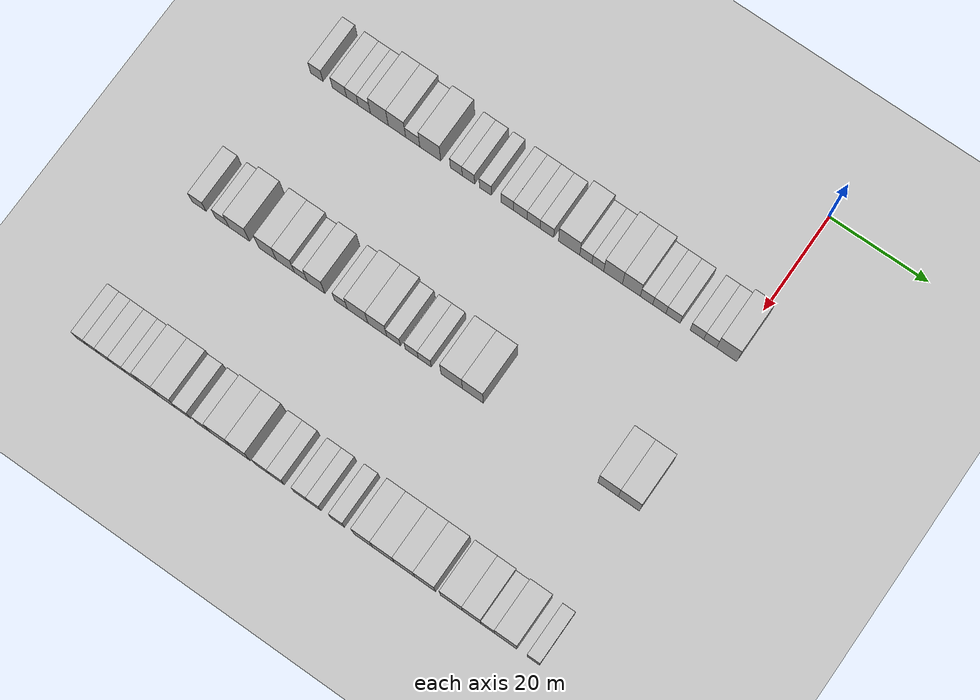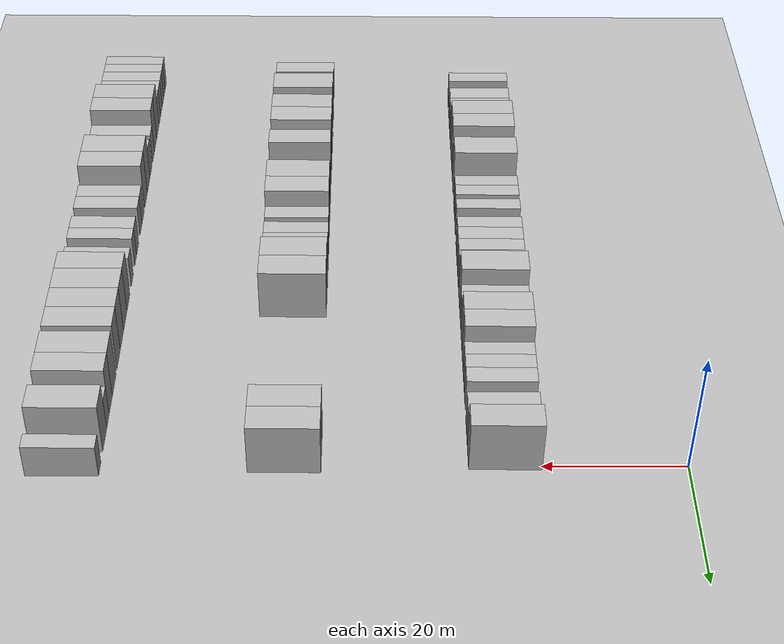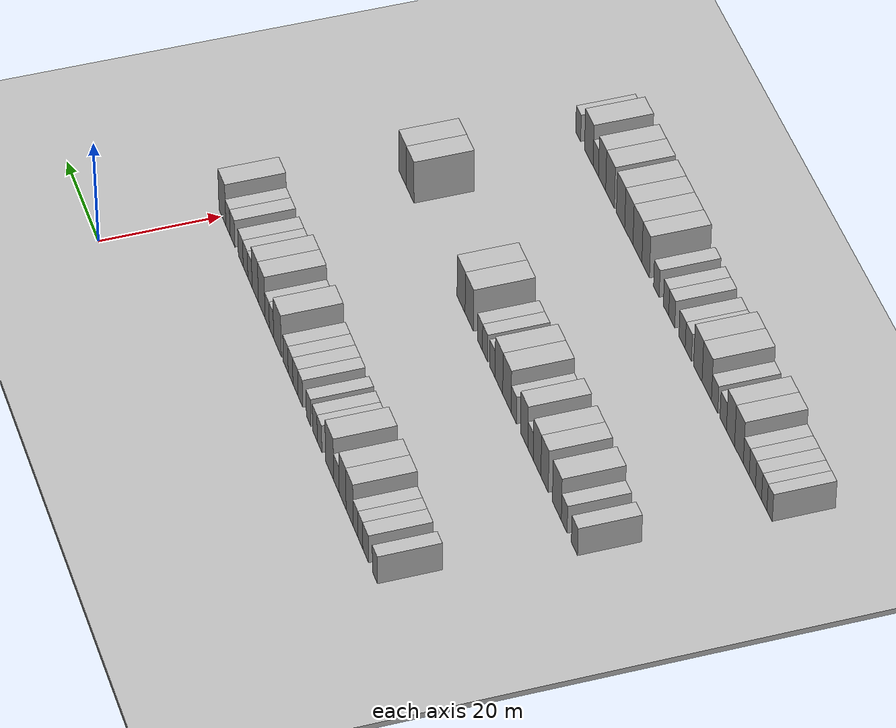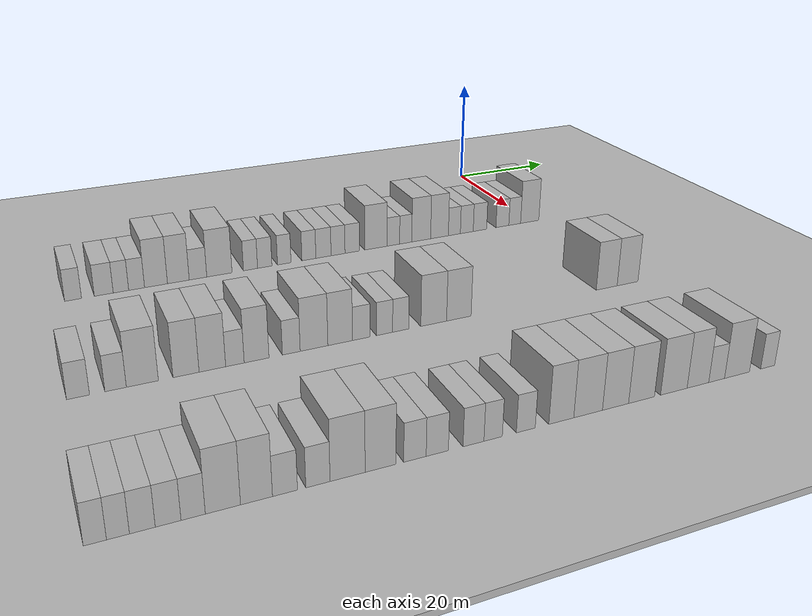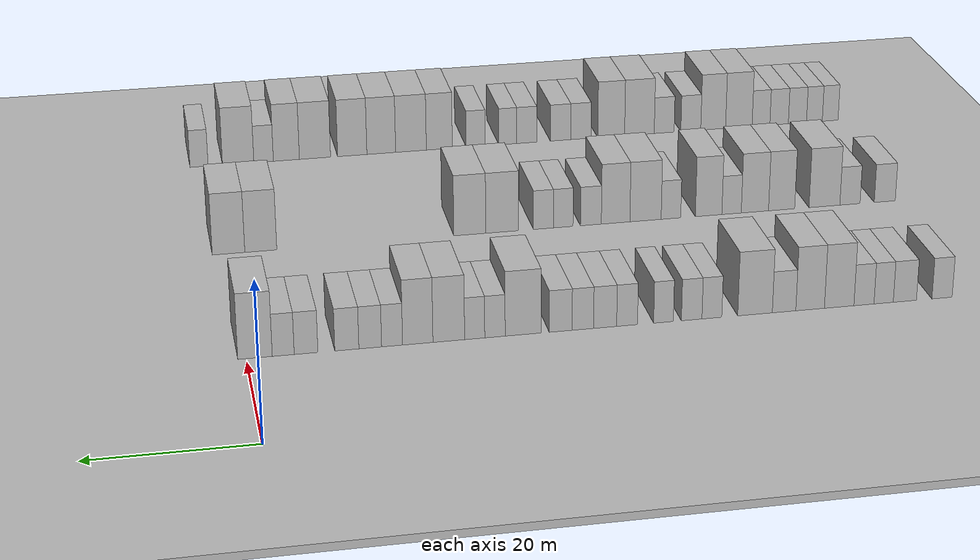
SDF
<sdf version="1.6">
 <world name="default">
  <include><name>ground_plane_1</name><uri>model://HANNAS_ground_plane</uri></include>
  <include>
   <name>ground_plane_2</name>
   <uri>model://HANNAS_ground_plane</uri>
   <pose>100 0 0  0 0 0</pose>
  </include>
  <model name="building_41">
   <static>1</static>
   <pose>25.0000 -85.6265 0 0.000000 0.000000 0.000000</pose>
   <link name="link">
    <pose>0 0 3.00 0 0 0</pose>
    <collision name="collision"><geometry><box><size>10.0000 2.6196 6.0000</size></box></geometry></collision>
    <visual name="visual">
     <cast_shadows>0</cast_shadows>
     <geometry><box><size>10.0000 2.6196 6.0000</size></box></geometry>
     <material>
      <script>
       <uri>model://HANNAS_wall/materials/scripts</uri>
       <uri>model://HANNAS_wall/materials/textures</uri>
       <name>vrc/HANNAS_wall</name>
      </script>
     </material>
    </visual>
   </link>
  </model>
  <model name="building_42">
   <static>1</static>
   <pose>25.0000 -80.8201 0 0.000000 0.000000 0.000000</pose>
   <link name="link">
    <pose>0 0 3.00 0 0 0</pose>
    <collision name="collision"><geometry><box><size>10.0000 2.9931 6.0000</size></box></geometry></collision>
    <visual name="visual">
     <cast_shadows>0</cast_shadows>
     <geometry><box><size>10.0000 2.9931 6.0000</size></box></geometry>
     <material>
      <script>
       <uri>model://HANNAS_wall/materials/scripts</uri>
       <uri>model://HANNAS_wall/materials/textures</uri>
       <name>vrc/HANNAS_wall</name>
      </script>
     </material>
    </visual>
   </link>
  </model>
  <model name="building_43">
   <static>1</static>
   <pose>25.0000 -78.0830 0 0.000000 0.000000 0.000000</pose>
   <link name="link">
    <pose>0 0 3.00 0 0 0</pose>
    <collision name="collision"><geometry><box><size>10.0000 2.4811 6.0000</size></box></geometry></collision>
    <visual name="visual">
     <cast_shadows>0</cast_shadows>
     <geometry><box><size>10.0000 2.4811 6.0000</size></box></geometry>
     <material>
      <script>
       <uri>model://HANNAS_wall/materials/scripts</uri>
       <uri>model://HANNAS_wall/materials/textures</uri>
       <name>vrc/HANNAS_wall</name>
      </script>
     </material>
    </visual>
   </link>
  </model>
  <model name="building_44">
   <static>1</static>
   <pose>25.0000 -75.5563 0 0.000000 0.000000 0.000000</pose>
   <link name="link">
    <pose>0 0 3.00 0 0 0</pose>
    <collision name="collision"><geometry><box><size>10.0000 2.5723 6.0000</size></box></geometry></collision>
    <visual name="visual">
     <cast_shadows>0</cast_shadows>
     <geometry><box><size>10.0000 2.5723 6.0000</size></box></geometry>
     <material>
      <script>
       <uri>model://HANNAS_wall/materials/scripts</uri>
       <uri>model://HANNAS_wall/materials/textures</uri>
       <name>vrc/HANNAS_wall</name>
      </script>
     </material>
    </visual>
   </link>
  </model>
  <model name="building_45">
   <static>1</static>
   <pose>25.0000 -72.3853 0 0.000000 0.000000 0.000000</pose>
   <link name="link">
    <pose>0 0 4.50 0 0 0</pose>
    <collision name="collision"><geometry><box><size>10.0000 3.7699 9.0000</size></box></geometry></collision>
    <visual name="visual">
     <cast_shadows>0</cast_shadows>
     <geometry><box><size>10.0000 3.7699 9.0000</size></box></geometry>
     <material>
      <script>
       <uri>model://HANNAS_wall/materials/scripts</uri>
       <uri>model://HANNAS_wall/materials/textures</uri>
       <name>vrc/HANNAS_wall</name>
      </script>
     </material>
    </visual>
   </link>
  </model>
  <model name="building_46">
   <static>1</static>
   <pose>25.0000 -68.6816 0 0.000000 0.000000 0.000000</pose>
   <link name="link">
    <pose>0 0 4.50 0 0 0</pose>
    <collision name="collision"><geometry><box><size>10.0000 3.6375 9.0000</size></box></geometry></collision>
    <visual name="visual">
     <cast_shadows>0</cast_shadows>
     <geometry><box><size>10.0000 3.6375 9.0000</size></box></geometry>
     <material>
      <script>
       <uri>model://HANNAS_wall/materials/scripts</uri>
       <uri>model://HANNAS_wall/materials/textures</uri>
       <name>vrc/HANNAS_wall</name>
      </script>
     </material>
    </visual>
   </link>
  </model>
  <model name="building_47">
   <static>1</static>
   <pose>25.0000 -65.3751 0 0.000000 0.000000 0.000000</pose>
   <link name="link">
    <pose>0 0 3.00 0 0 0</pose>
    <collision name="collision"><geometry><box><size>10.0000 2.9756 6.0000</size></box></geometry></collision>
    <visual name="visual">
     <cast_shadows>0</cast_shadows>
     <geometry><box><size>10.0000 2.9756 6.0000</size></box></geometry>
     <material>
      <script>
       <uri>model://HANNAS_wall/materials/scripts</uri>
       <uri>model://HANNAS_wall/materials/textures</uri>
       <name>vrc/HANNAS_wall</name>
      </script>
     </material>
    </visual>
   </link>
  </model>
  <model name="building_48">
   <static>1</static>
   <pose>25.0000 -61.7052 0 0.000000 0.000000 0.000000</pose>
   <link name="link">
    <pose>0 0 4.50 0 0 0</pose>
    <collision name="collision"><geometry><box><size>10.0000 4.3643 9.0000</size></box></geometry></collision>
    <visual name="visual">
     <cast_shadows>0</cast_shadows>
     <geometry><box><size>10.0000 4.3643 9.0000</size></box></geometry>
     <material>
      <script>
       <uri>model://HANNAS_wall/materials/scripts</uri>
       <uri>model://HANNAS_wall/materials/textures</uri>
       <name>vrc/HANNAS_wall</name>
      </script>
     </material>
    </visual>
   </link>
  </model>
  <model name="building_49">
   <static>1</static>
   <pose>25.0000 -56.2789 0 0.000000 0.000000 0.000000</pose>
   <link name="link">
    <pose>0 0 3.00 0 0 0</pose>
    <collision name="collision"><geometry><box><size>10.0000 2.4881 6.0000</size></box></geometry></collision>
    <visual name="visual">
     <cast_shadows>0</cast_shadows>
     <geometry><box><size>10.0000 2.4881 6.0000</size></box></geometry>
     <material>
      <script>
       <uri>model://HANNAS_wall/materials/scripts</uri>
       <uri>model://HANNAS_wall/materials/textures</uri>
       <name>vrc/HANNAS_wall</name>
      </script>
     </material>
    </visual>
   </link>
  </model>
  <model name="building_50">
   <static>1</static>
   <pose>25.0000 -53.7504 0 0.000000 0.000000 0.000000</pose>
   <link name="link">
    <pose>0 0 3.00 0 0 0</pose>
    <collision name="collision"><geometry><box><size>10.0000 2.5690 6.0000</size></box></geometry></collision>
    <visual name="visual">
     <cast_shadows>0</cast_shadows>
     <geometry><box><size>10.0000 2.5690 6.0000</size></box></geometry>
     <material>
      <script>
       <uri>model://HANNAS_wall/materials/scripts</uri>
       <uri>model://HANNAS_wall/materials/textures</uri>
       <name>vrc/HANNAS_wall</name>
      </script>
     </material>
    </visual>
   </link>
  </model>
  <model name="building_51">
   <static>1</static>
   <pose>25.0000 -50.2380 0 0.000000 0.000000 0.000000</pose>
   <link name="link">
    <pose>0 0 3.00 0 0 0</pose>
    <collision name="collision"><geometry><box><size>10.0000 2.4558 6.0000</size></box></geometry></collision>
    <visual name="visual">
     <cast_shadows>0</cast_shadows>
     <geometry><box><size>10.0000 2.4558 6.0000</size></box></geometry>
     <material>
      <script>
       <uri>model://HANNAS_wall/materials/scripts</uri>
       <uri>model://HANNAS_wall/materials/textures</uri>
       <name>vrc/HANNAS_wall</name>
      </script>
     </material>
    </visual>
   </link>
  </model>
  <model name="building_52">
   <static>1</static>
   <pose>25.0000 -45.7204 0 0.000000 0.000000 0.000000</pose>
   <link name="link">
    <pose>0 0 3.00 0 0 0</pose>
    <collision name="collision"><geometry><box><size>10.0000 2.5794 6.0000</size></box></geometry></collision>
    <visual name="visual">
     <cast_shadows>0</cast_shadows>
     <geometry><box><size>10.0000 2.5794 6.0000</size></box></geometry>
     <material>
      <script>
       <uri>model://HANNAS_wall/materials/scripts</uri>
       <uri>model://HANNAS_wall/materials/textures</uri>
       <name>vrc/HANNAS_wall</name>
      </script>
     </material>
    </visual>
   </link>
  </model>
  <model name="building_53">
   <static>1</static>
   <pose>25.0000 -43.0080 0 0.000000 0.000000 0.000000</pose>
   <link name="link">
    <pose>0 0 3.00 0 0 0</pose>
    <collision name="collision"><geometry><box><size>10.0000 2.8453 6.0000</size></box></geometry></collision>
    <visual name="visual">
     <cast_shadows>0</cast_shadows>
     <geometry><box><size>10.0000 2.8453 6.0000</size></box></geometry>
     <material>
      <script>
       <uri>model://HANNAS_wall/materials/scripts</uri>
       <uri>model://HANNAS_wall/materials/textures</uri>
       <name>vrc/HANNAS_wall</name>
      </script>
     </material>
    </visual>
   </link>
  </model>
  <model name="building_54">
   <static>1</static>
   <pose>25.0000 -40.2652 0 0.000000 0.000000 0.000000</pose>
   <link name="link">
    <pose>0 0 3.00 0 0 0</pose>
    <collision name="collision"><geometry><box><size>10.0000 2.6403 6.0000</size></box></geometry></collision>
    <visual name="visual">
     <cast_shadows>0</cast_shadows>
     <geometry><box><size>10.0000 2.6403 6.0000</size></box></geometry>
     <material>
      <script>
       <uri>model://HANNAS_wall/materials/scripts</uri>
       <uri>model://HANNAS_wall/materials/textures</uri>
       <name>vrc/HANNAS_wall</name>
      </script>
     </material>
    </visual>
   </link>
  </model>
  <model name="building_55">
   <static>1</static>
   <pose>25.0000 -37.5431 0 0.000000 0.000000 0.000000</pose>
   <link name="link">
    <pose>0 0 3.00 0 0 0</pose>
    <collision name="collision"><geometry><box><size>10.0000 2.8040 6.0000</size></box></geometry></collision>
    <visual name="visual">
     <cast_shadows>0</cast_shadows>
     <geometry><box><size>10.0000 2.8040 6.0000</size></box></geometry>
     <material>
      <script>
       <uri>model://HANNAS_wall/materials/scripts</uri>
       <uri>model://HANNAS_wall/materials/textures</uri>
       <name>vrc/HANNAS_wall</name>
      </script>
     </material>
    </visual>
   </link>
  </model>
  <model name="building_56">
   <static>1</static>
   <pose>25.0000 -32.9571 0 0.000000 0.000000 0.000000</pose>
   <link name="link">
    <pose>0 0 4.50 0 0 0</pose>
    <collision name="collision"><geometry><box><size>10.0000 4.3679 9.0000</size></box></geometry></collision>
    <visual name="visual">
     <cast_shadows>0</cast_shadows>
     <geometry><box><size>10.0000 4.3679 9.0000</size></box></geometry>
     <material>
      <script>
       <uri>model://HANNAS_wall/materials/scripts</uri>
       <uri>model://HANNAS_wall/materials/textures</uri>
       <name>vrc/HANNAS_wall</name>
      </script>
     </material>
    </visual>
   </link>
  </model>
  <model name="building_57">
   <static>1</static>
   <pose>25.0000 -29.5361 0 0.000000 0.000000 0.000000</pose>
   <link name="link">
    <pose>0 0 3.00 0 0 0</pose>
    <collision name="collision"><geometry><box><size>10.0000 2.4743 6.0000</size></box></geometry></collision>
    <visual name="visual">
     <cast_shadows>0</cast_shadows>
     <geometry><box><size>10.0000 2.4743 6.0000</size></box></geometry>
     <material>
      <script>
       <uri>model://HANNAS_wall/materials/scripts</uri>
       <uri>model://HANNAS_wall/materials/textures</uri>
       <name>vrc/HANNAS_wall</name>
      </script>
     </material>
    </visual>
   </link>
  </model>
  <model name="building_58">
   <static>1</static>
   <pose>25.0000 -27.0801 0 0.000000 0.000000 0.000000</pose>
   <link name="link">
    <pose>0 0 3.00 0 0 0</pose>
    <collision name="collision"><geometry><box><size>10.0000 2.4377 6.0000</size></box></geometry></collision>
    <visual name="visual">
     <cast_shadows>0</cast_shadows>
     <geometry><box><size>10.0000 2.4377 6.0000</size></box></geometry>
     <material>
      <script>
       <uri>model://HANNAS_wall/materials/scripts</uri>
       <uri>model://HANNAS_wall/materials/textures</uri>
       <name>vrc/HANNAS_wall</name>
      </script>
     </material>
    </visual>
   </link>
  </model>
  <model name="building_59">
   <static>1</static>
   <pose>25.0000 -23.9537 0 0.000000 0.000000 0.000000</pose>
   <link name="link">
    <pose>0 0 4.50 0 0 0</pose>
    <collision name="collision"><geometry><box><size>10.0000 3.8151 9.0000</size></box></geometry></collision>
    <visual name="visual">
     <cast_shadows>0</cast_shadows>
     <geometry><box><size>10.0000 3.8151 9.0000</size></box></geometry>
     <material>
      <script>
       <uri>model://HANNAS_wall/materials/scripts</uri>
       <uri>model://HANNAS_wall/materials/textures</uri>
       <name>vrc/HANNAS_wall</name>
      </script>
     </material>
    </visual>
   </link>
  </model>
  <model name="building_60">
   <static>1</static>
   <pose>25.0000 -20.2255 0 0.000000 0.000000 0.000000</pose>
   <link name="link">
    <pose>0 0 4.50 0 0 0</pose>
    <collision name="collision"><geometry><box><size>10.0000 3.6412 9.0000</size></box></geometry></collision>
    <visual name="visual">
     <cast_shadows>0</cast_shadows>
     <geometry><box><size>10.0000 3.6412 9.0000</size></box></geometry>
     <material>
      <script>
       <uri>model://HANNAS_wall/materials/scripts</uri>
       <uri>model://HANNAS_wall/materials/textures</uri>
       <name>vrc/HANNAS_wall</name>
      </script>
     </material>
    </visual>
   </link>
  </model>
  <model name="building_61">
   <static>1</static>
   <pose>25.0000 -17.1517 0 0.000000 0.000000 0.000000</pose>
   <link name="link">
    <pose>0 0 3.00 0 0 0</pose>
    <collision name="collision"><geometry><box><size>10.0000 2.5064 6.0000</size></box></geometry></collision>
    <visual name="visual">
     <cast_shadows>0</cast_shadows>
     <geometry><box><size>10.0000 2.5064 6.0000</size></box></geometry>
     <material>
      <script>
       <uri>model://HANNAS_wall/materials/scripts</uri>
       <uri>model://HANNAS_wall/materials/textures</uri>
       <name>vrc/HANNAS_wall</name>
      </script>
     </material>
    </visual>
   </link>
  </model>
  <model name="building_62">
   <static>1</static>
   <pose>25.0000 -14.5448 0 0.000000 0.000000 0.000000</pose>
   <link name="link">
    <pose>0 0 3.00 0 0 0</pose>
    <collision name="collision"><geometry><box><size>10.0000 2.7074 6.0000</size></box></geometry></collision>
    <visual name="visual">
     <cast_shadows>0</cast_shadows>
     <geometry><box><size>10.0000 2.7074 6.0000</size></box></geometry>
     <material>
      <script>
       <uri>model://HANNAS_wall/materials/scripts</uri>
       <uri>model://HANNAS_wall/materials/textures</uri>
       <name>vrc/HANNAS_wall</name>
      </script>
     </material>
    </visual>
   </link>
  </model>
  <model name="building_63">
   <static>1</static>
   <pose>25.0000 -11.7615 0 0.000000 0.000000 0.000000</pose>
   <link name="link">
    <pose>0 0 3.00 0 0 0</pose>
    <collision name="collision"><geometry><box><size>10.0000 2.8593 6.0000</size></box></geometry></collision>
    <visual name="visual">
     <cast_shadows>0</cast_shadows>
     <geometry><box><size>10.0000 2.8593 6.0000</size></box></geometry>
     <material>
      <script>
       <uri>model://HANNAS_wall/materials/scripts</uri>
       <uri>model://HANNAS_wall/materials/textures</uri>
       <name>vrc/HANNAS_wall</name>
      </script>
     </material>
    </visual>
   </link>
  </model>
  <model name="building_64">
   <static>1</static>
   <pose>25.0000 -6.9346 0 0.000000 0.000000 0.000000</pose>
   <link name="link">
    <pose>0 0 3.00 0 0 0</pose>
    <collision name="collision"><geometry><box><size>10.0000 2.7945 6.0000</size></box></geometry></collision>
    <visual name="visual">
     <cast_shadows>0</cast_shadows>
     <geometry><box><size>10.0000 2.7945 6.0000</size></box></geometry>
     <material>
      <script>
       <uri>model://HANNAS_wall/materials/scripts</uri>
       <uri>model://HANNAS_wall/materials/textures</uri>
       <name>vrc/HANNAS_wall</name>
      </script>
     </material>
    </visual>
   </link>
  </model>
  <model name="building_65">
   <static>1</static>
   <pose>25.0000 -4.2484 0 0.000000 0.000000 0.000000</pose>
   <link name="link">
    <pose>0 0 3.00 0 0 0</pose>
    <collision name="collision"><geometry><box><size>10.0000 2.5780 6.0000</size></box></geometry></collision>
    <visual name="visual">
     <cast_shadows>0</cast_shadows>
     <geometry><box><size>10.0000 2.5780 6.0000</size></box></geometry>
     <material>
      <script>
       <uri>model://HANNAS_wall/materials/scripts</uri>
       <uri>model://HANNAS_wall/materials/textures</uri>
       <name>vrc/HANNAS_wall</name>
      </script>
     </material>
    </visual>
   </link>
  </model>
  <model name="building_66">
   <static>1</static>
   <pose>25.0000 -0.9362 0 0.000000 0.000000 0.000000</pose>
   <link name="link">
    <pose>0 0 4.50 0 0 0</pose>
    <collision name="collision"><geometry><box><size>10.0000 4.0464 9.0000</size></box></geometry></collision>
    <visual name="visual">
     <cast_shadows>0</cast_shadows>
     <geometry><box><size>10.0000 4.0464 9.0000</size></box></geometry>
     <material>
      <script>
       <uri>model://HANNAS_wall/materials/scripts</uri>
       <uri>model://HANNAS_wall/materials/textures</uri>
       <name>vrc/HANNAS_wall</name>
      </script>
     </material>
    </visual>
   </link>
  </model>
  <model name="building_178">
   <static>1</static>
   <pose>55.0000 -88.4368 0 0.000000 0.000000 0.000000</pose>
   <link name="link">
    <pose>0 0 3.00 0 0 0</pose>
    <collision name="collision"><geometry><box><size>10.0000 2.9641 6.0000</size></box></geometry></collision>
    <visual name="visual">
     <cast_shadows>0</cast_shadows>
     <geometry><box><size>10.0000 2.9641 6.0000</size></box></geometry>
     <material>
      <script>
       <uri>model://HANNAS_wall/materials/scripts</uri>
       <uri>model://HANNAS_wall/materials/textures</uri>
       <name>vrc/HANNAS_wall</name>
      </script>
     </material>
    </visual>
   </link>
  </model>
  <model name="building_179">
   <static>1</static>
   <pose>55.0000 -83.5369 0 0.000000 0.000000 0.000000</pose>
   <link name="link">
    <pose>0 0 3.00 0 0 0</pose>
    <collision name="collision"><geometry><box><size>10.0000 2.8357 6.0000</size></box></geometry></collision>
    <visual name="visual">
     <cast_shadows>0</cast_shadows>
     <geometry><box><size>10.0000 2.8357 6.0000</size></box></geometry>
     <material>
      <script>
       <uri>model://HANNAS_wall/materials/scripts</uri>
       <uri>model://HANNAS_wall/materials/textures</uri>
       <name>vrc/HANNAS_wall</name>
      </script>
     </material>
    </visual>
   </link>
  </model>
  <model name="building_180">
   <static>1</static>
   <pose>55.0000 -79.9616 0 0.000000 0.000000 0.000000</pose>
   <link name="link">
    <pose>0 0 4.50 0 0 0</pose>
    <collision name="collision"><geometry><box><size>10.0000 4.3150 9.0000</size></box></geometry></collision>
    <visual name="visual">
     <cast_shadows>0</cast_shadows>
     <geometry><box><size>10.0000 4.3150 9.0000</size></box></geometry>
     <material>
      <script>
       <uri>model://HANNAS_wall/materials/scripts</uri>
       <uri>model://HANNAS_wall/materials/textures</uri>
       <name>vrc/HANNAS_wall</name>
      </script>
     </material>
    </visual>
   </link>
  </model>
  <model name="building_181">
   <static>1</static>
   <pose>55.0000 -73.9859 0 0.000000 0.000000 0.000000</pose>
   <link name="link">
    <pose>0 0 4.50 0 0 0</pose>
    <collision name="collision"><geometry><box><size>10.0000 3.6363 9.0000</size></box></geometry></collision>
    <visual name="visual">
     <cast_shadows>0</cast_shadows>
     <geometry><box><size>10.0000 3.6363 9.0000</size></box></geometry>
     <material>
      <script>
       <uri>model://HANNAS_wall/materials/scripts</uri>
       <uri>model://HANNAS_wall/materials/textures</uri>
       <name>vrc/HANNAS_wall</name>
      </script>
     </material>
    </visual>
   </link>
  </model>
  <model name="building_182">
   <static>1</static>
   <pose>55.0000 -70.2810 0 0.000000 0.000000 0.000000</pose>
   <link name="link">
    <pose>0 0 4.50 0 0 0</pose>
    <collision name="collision"><geometry><box><size>10.0000 3.7736 9.0000</size></box></geometry></collision>
    <visual name="visual">
     <cast_shadows>0</cast_shadows>
     <geometry><box><size>10.0000 3.7736 9.0000</size></box></geometry>
     <material>
      <script>
       <uri>model://HANNAS_wall/materials/scripts</uri>
       <uri>model://HANNAS_wall/materials/textures</uri>
       <name>vrc/HANNAS_wall</name>
      </script>
     </material>
    </visual>
   </link>
  </model>
  <model name="building_183">
   <static>1</static>
   <pose>55.0000 -67.0568 0 0.000000 0.000000 0.000000</pose>
   <link name="link">
    <pose>0 0 3.00 0 0 0</pose>
    <collision name="collision"><geometry><box><size>10.0000 2.6746 6.0000</size></box></geometry></collision>
    <visual name="visual">
     <cast_shadows>0</cast_shadows>
     <geometry><box><size>10.0000 2.6746 6.0000</size></box></geometry>
     <material>
      <script>
       <uri>model://HANNAS_wall/materials/scripts</uri>
       <uri>model://HANNAS_wall/materials/textures</uri>
       <name>vrc/HANNAS_wall</name>
      </script>
     </material>
    </visual>
   </link>
  </model>
  <model name="building_184">
   <static>1</static>
   <pose>55.0000 -63.8959 0 0.000000 0.000000 0.000000</pose>
   <link name="link">
    <pose>0 0 4.50 0 0 0</pose>
    <collision name="collision"><geometry><box><size>10.0000 3.6474 9.0000</size></box></geometry></collision>
    <visual name="visual">
     <cast_shadows>0</cast_shadows>
     <geometry><box><size>10.0000 3.6474 9.0000</size></box></geometry>
     <material>
      <script>
       <uri>model://HANNAS_wall/materials/scripts</uri>
       <uri>model://HANNAS_wall/materials/textures</uri>
       <name>vrc/HANNAS_wall</name>
      </script>
     </material>
    </visual>
   </link>
  </model>
  <model name="building_185">
   <static>1</static>
   <pose>55.0000 -58.7326 0 0.000000 0.000000 0.000000</pose>
   <link name="link">
    <pose>0 0 3.00 0 0 0</pose>
    <collision name="collision"><geometry><box><size>10.0000 2.6791 6.0000</size></box></geometry></collision>
    <visual name="visual">
     <cast_shadows>0</cast_shadows>
     <geometry><box><size>10.0000 2.6791 6.0000</size></box></geometry>
     <material>
      <script>
       <uri>model://HANNAS_wall/materials/scripts</uri>
       <uri>model://HANNAS_wall/materials/textures</uri>
       <name>vrc/HANNAS_wall</name>
      </script>
     </material>
    </visual>
   </link>
  </model>
  <model name="building_186">
   <static>1</static>
   <pose>55.0000 -55.2650 0 0.000000 0.000000 0.000000</pose>
   <link name="link">
    <pose>0 0 4.50 0 0 0</pose>
    <collision name="collision"><geometry><box><size>10.0000 4.2561 9.0000</size></box></geometry></collision>
    <visual name="visual">
     <cast_shadows>0</cast_shadows>
     <geometry><box><size>10.0000 4.2561 9.0000</size></box></geometry>
     <material>
      <script>
       <uri>model://HANNAS_wall/materials/scripts</uri>
       <uri>model://HANNAS_wall/materials/textures</uri>
       <name>vrc/HANNAS_wall</name>
      </script>
     </material>
    </visual>
   </link>
  </model>
  <model name="building_187">
   <static>1</static>
   <pose>55.0000 -51.2010 0 0.000000 0.000000 0.000000</pose>
   <link name="link">
    <pose>0 0 4.50 0 0 0</pose>
    <collision name="collision"><geometry><box><size>10.0000 3.8721 9.0000</size></box></geometry></collision>
    <visual name="visual">
     <cast_shadows>0</cast_shadows>
     <geometry><box><size>10.0000 3.8721 9.0000</size></box></geometry>
     <material>
      <script>
       <uri>model://HANNAS_wall/materials/scripts</uri>
       <uri>model://HANNAS_wall/materials/textures</uri>
       <name>vrc/HANNAS_wall</name>
      </script>
     </material>
    </visual>
   </link>
  </model>
  <model name="building_188">
   <static>1</static>
   <pose>55.0000 -47.8561 0 0.000000 0.000000 0.000000</pose>
   <link name="link">
    <pose>0 0 3.00 0 0 0</pose>
    <collision name="collision"><geometry><box><size>10.0000 2.8178 6.0000</size></box></geometry></collision>
    <visual name="visual">
     <cast_shadows>0</cast_shadows>
     <geometry><box><size>10.0000 2.8178 6.0000</size></box></geometry>
     <material>
      <script>
       <uri>model://HANNAS_wall/materials/scripts</uri>
       <uri>model://HANNAS_wall/materials/textures</uri>
       <name>vrc/HANNAS_wall</name>
      </script>
     </material>
    </visual>
   </link>
  </model>
  <model name="building_189">
   <static>1</static>
   <pose>55.0000 -44.1254 0 0.000000 0.000000 0.000000</pose>
   <link name="link">
    <pose>0 0 3.00 0 0 0</pose>
    <collision name="collision"><geometry><box><size>10.0000 2.6436 6.0000</size></box></geometry></collision>
    <visual name="visual">
     <cast_shadows>0</cast_shadows>
     <geometry><box><size>10.0000 2.6436 6.0000</size></box></geometry>
     <material>
      <script>
       <uri>model://HANNAS_wall/materials/scripts</uri>
       <uri>model://HANNAS_wall/materials/textures</uri>
       <name>vrc/HANNAS_wall</name>
      </script>
     </material>
    </visual>
   </link>
  </model>
  <model name="building_190">
   <static>1</static>
   <pose>55.0000 -41.4663 0 0.000000 0.000000 0.000000</pose>
   <link name="link">
    <pose>0 0 3.00 0 0 0</pose>
    <collision name="collision"><geometry><box><size>10.0000 2.6744 6.0000</size></box></geometry></collision>
    <visual name="visual">
     <cast_shadows>0</cast_shadows>
     <geometry><box><size>10.0000 2.6744 6.0000</size></box></geometry>
     <material>
      <script>
       <uri>model://HANNAS_wall/materials/scripts</uri>
       <uri>model://HANNAS_wall/materials/textures</uri>
       <name>vrc/HANNAS_wall</name>
      </script>
     </material>
    </visual>
   </link>
  </model>
  <model name="building_191">
   <static>1</static>
   <pose>55.0000 -35.9480 0 0.000000 0.000000 0.000000</pose>
   <link name="link">
    <pose>0 0 4.50 0 0 0</pose>
    <collision name="collision"><geometry><box><size>10.0000 4.3622 9.0000</size></box></geometry></collision>
    <visual name="visual">
     <cast_shadows>0</cast_shadows>
     <geometry><box><size>10.0000 4.3622 9.0000</size></box></geometry>
     <material>
      <script>
       <uri>model://HANNAS_wall/materials/scripts</uri>
       <uri>model://HANNAS_wall/materials/textures</uri>
       <name>vrc/HANNAS_wall</name>
      </script>
     </material>
    </visual>
   </link>
  </model>
  <model name="building_192">
   <static>1</static>
   <pose>55.0000 -31.6472 0 0.000000 0.000000 0.000000</pose>
   <link name="link">
    <pose>0 0 4.50 0 0 0</pose>
    <collision name="collision"><geometry><box><size>10.0000 4.2395 9.0000</size></box></geometry></collision>
    <visual name="visual">
     <cast_shadows>0</cast_shadows>
     <geometry><box><size>10.0000 4.2395 9.0000</size></box></geometry>
     <material>
      <script>
       <uri>model://HANNAS_wall/materials/scripts</uri>
       <uri>model://HANNAS_wall/materials/textures</uri>
       <name>vrc/HANNAS_wall</name>
      </script>
     </material>
    </visual>
   </link>
  </model>
  <model name="building_193">
   <static>1</static>
   <pose>55.0000 -4.3536 0 0.000000 0.000000 0.000000</pose>
   <link name="link">
    <pose>0 0 4.50 0 0 0</pose>
    <collision name="collision"><geometry><box><size>10.0000 4.1159 9.0000</size></box></geometry></collision>
    <visual name="visual">
     <cast_shadows>0</cast_shadows>
     <geometry><box><size>10.0000 4.1159 9.0000</size></box></geometry>
     <material>
      <script>
       <uri>model://HANNAS_wall/materials/scripts</uri>
       <uri>model://HANNAS_wall/materials/textures</uri>
       <name>vrc/HANNAS_wall</name>
      </script>
     </material>
    </visual>
   </link>
  </model>
  <model name="building_194">
   <static>1</static>
   <pose>55.0000 -0.2102 0 0.000000 0.000000 0.000000</pose>
   <link name="link">
    <pose>0 0 4.50 0 0 0</pose>
    <collision name="collision"><geometry><box><size>10.0000 4.1709 9.0000</size></box></geometry></collision>
    <visual name="visual">
     <cast_shadows>0</cast_shadows>
     <geometry><box><size>10.0000 4.1709 9.0000</size></box></geometry>
     <material>
      <script>
       <uri>model://HANNAS_wall/materials/scripts</uri>
       <uri>model://HANNAS_wall/materials/textures</uri>
       <name>vrc/HANNAS_wall</name>
      </script>
     </material>
    </visual>
   </link>
  </model>
  <model name="building_317">
   <static>1</static>
   <pose>85.0000 -90.2902 0 0.000000 0.000000 0.000000</pose>
   <link name="link">
    <pose>0 0 3.00 0 0 0</pose>
    <collision name="collision"><geometry><box><size>10.0000 2.4050 6.0000</size></box></geometry></collision>
    <visual name="visual">
     <cast_shadows>0</cast_shadows>
     <geometry><box><size>10.0000 2.4050 6.0000</size></box></geometry>
     <material>
      <script>
       <uri>model://HANNAS_wall/materials/scripts</uri>
       <uri>model://HANNAS_wall/materials/textures</uri>
       <name>vrc/HANNAS_wall</name>
      </script>
     </material>
    </visual>
   </link>
  </model>
  <model name="building_318">
   <static>1</static>
   <pose>85.0000 -87.8858 0 0.000000 0.000000 0.000000</pose>
   <link name="link">
    <pose>0 0 3.00 0 0 0</pose>
    <collision name="collision"><geometry><box><size>10.0000 2.4039 6.0000</size></box></geometry></collision>
    <visual name="visual">
     <cast_shadows>0</cast_shadows>
     <geometry><box><size>10.0000 2.4039 6.0000</size></box></geometry>
     <material>
      <script>
       <uri>model://HANNAS_wall/materials/scripts</uri>
       <uri>model://HANNAS_wall/materials/textures</uri>
       <name>vrc/HANNAS_wall</name>
      </script>
     </material>
    </visual>
   </link>
  </model>
  <model name="building_319">
   <static>1</static>
   <pose>85.0000 -85.3088 0 0.000000 0.000000 0.000000</pose>
   <link name="link">
    <pose>0 0 3.00 0 0 0</pose>
    <collision name="collision"><geometry><box><size>10.0000 2.7500 6.0000</size></box></geometry></collision>
    <visual name="visual">
     <cast_shadows>0</cast_shadows>
     <geometry><box><size>10.0000 2.7500 6.0000</size></box></geometry>
     <material>
      <script>
       <uri>model://HANNAS_wall/materials/scripts</uri>
       <uri>model://HANNAS_wall/materials/textures</uri>
       <name>vrc/HANNAS_wall</name>
      </script>
     </material>
    </visual>
   </link>
  </model>
  <model name="building_320">
   <static>1</static>
   <pose>85.0000 -82.5367 0 0.000000 0.000000 0.000000</pose>
   <link name="link">
    <pose>0 0 3.00 0 0 0</pose>
    <collision name="collision"><geometry><box><size>10.0000 2.7942 6.0000</size></box></geometry></collision>
    <visual name="visual">
     <cast_shadows>0</cast_shadows>
     <geometry><box><size>10.0000 2.7942 6.0000</size></box></geometry>
     <material>
      <script>
       <uri>model://HANNAS_wall/materials/scripts</uri>
       <uri>model://HANNAS_wall/materials/textures</uri>
       <name>vrc/HANNAS_wall</name>
      </script>
     </material>
    </visual>
   </link>
  </model>
  <model name="building_321">
   <static>1</static>
   <pose>85.0000 -79.7943 0 0.000000 0.000000 0.000000</pose>
   <link name="link">
    <pose>0 0 3.00 0 0 0</pose>
    <collision name="collision"><geometry><box><size>10.0000 2.6906 6.0000</size></box></geometry></collision>
    <visual name="visual">
     <cast_shadows>0</cast_shadows>
     <geometry><box><size>10.0000 2.6906 6.0000</size></box></geometry>
     <material>
      <script>
       <uri>model://HANNAS_wall/materials/scripts</uri>
       <uri>model://HANNAS_wall/materials/textures</uri>
       <name>vrc/HANNAS_wall</name>
      </script>
     </material>
    </visual>
   </link>
  </model>
  <model name="building_322">
   <static>1</static>
   <pose>85.0000 -76.4545 0 0.000000 0.000000 0.000000</pose>
   <link name="link">
    <pose>0 0 4.50 0 0 0</pose>
    <collision name="collision"><geometry><box><size>10.0000 3.9889 9.0000</size></box></geometry></collision>
    <visual name="visual">
     <cast_shadows>0</cast_shadows>
     <geometry><box><size>10.0000 3.9889 9.0000</size></box></geometry>
     <material>
      <script>
       <uri>model://HANNAS_wall/materials/scripts</uri>
       <uri>model://HANNAS_wall/materials/textures</uri>
       <name>vrc/HANNAS_wall</name>
      </script>
     </material>
    </visual>
   </link>
  </model>
  <model name="building_323">
   <static>1</static>
   <pose>85.0000 -72.6035 0 0.000000 0.000000 0.000000</pose>
   <link name="link">
    <pose>0 0 4.50 0 0 0</pose>
    <collision name="collision"><geometry><box><size>10.0000 3.7131 9.0000</size></box></geometry></collision>
    <visual name="visual">
     <cast_shadows>0</cast_shadows>
     <geometry><box><size>10.0000 3.7131 9.0000</size></box></geometry>
     <material>
      <script>
       <uri>model://HANNAS_wall/materials/scripts</uri>
       <uri>model://HANNAS_wall/materials/textures</uri>
       <name>vrc/HANNAS_wall</name>
      </script>
     </material>
    </visual>
   </link>
  </model>
  <model name="building_324">
   <static>1</static>
   <pose>85.0000 -69.2616 0 0.000000 0.000000 0.000000</pose>
   <link name="link">
    <pose>0 0 3.00 0 0 0</pose>
    <collision name="collision"><geometry><box><size>10.0000 2.9708 6.0000</size></box></geometry></collision>
    <visual name="visual">
     <cast_shadows>0</cast_shadows>
     <geometry><box><size>10.0000 2.9708 6.0000</size></box></geometry>
     <material>
      <script>
       <uri>model://HANNAS_wall/materials/scripts</uri>
       <uri>model://HANNAS_wall/materials/textures</uri>
       <name>vrc/HANNAS_wall</name>
      </script>
     </material>
    </visual>
   </link>
  </model>
  <model name="building_325">
   <static>1</static>
   <pose>85.0000 -65.2971 0 0.000000 0.000000 0.000000</pose>
   <link name="link">
    <pose>0 0 3.00 0 0 0</pose>
    <collision name="collision"><geometry><box><size>10.0000 2.9583 6.0000</size></box></geometry></collision>
    <visual name="visual">
     <cast_shadows>0</cast_shadows>
     <geometry><box><size>10.0000 2.9583 6.0000</size></box></geometry>
     <material>
      <script>
       <uri>model://HANNAS_wall/materials/scripts</uri>
       <uri>model://HANNAS_wall/materials/textures</uri>
       <name>vrc/HANNAS_wall</name>
      </script>
     </material>
    </visual>
   </link>
  </model>
  <model name="building_326">
   <static>1</static>
   <pose>85.0000 -61.6244 0 0.000000 0.000000 0.000000</pose>
   <link name="link">
    <pose>0 0 4.50 0 0 0</pose>
    <collision name="collision"><geometry><box><size>10.0000 4.3872 9.0000</size></box></geometry></collision>
    <visual name="visual">
     <cast_shadows>0</cast_shadows>
     <geometry><box><size>10.0000 4.3872 9.0000</size></box></geometry>
     <material>
      <script>
       <uri>model://HANNAS_wall/materials/scripts</uri>
       <uri>model://HANNAS_wall/materials/textures</uri>
       <name>vrc/HANNAS_wall</name>
      </script>
     </material>
    </visual>
   </link>
  </model>
  <model name="building_327">
   <static>1</static>
   <pose>85.0000 -57.4511 0 0.000000 0.000000 0.000000</pose>
   <link name="link">
    <pose>0 0 4.50 0 0 0</pose>
    <collision name="collision"><geometry><box><size>10.0000 3.9593 9.0000</size></box></geometry></collision>
    <visual name="visual">
     <cast_shadows>0</cast_shadows>
     <geometry><box><size>10.0000 3.9593 9.0000</size></box></geometry>
     <material>
      <script>
       <uri>model://HANNAS_wall/materials/scripts</uri>
       <uri>model://HANNAS_wall/materials/textures</uri>
       <name>vrc/HANNAS_wall</name>
      </script>
     </material>
    </visual>
   </link>
  </model>
  <model name="building_328">
   <static>1</static>
   <pose>85.0000 -52.9891 0 0.000000 0.000000 0.000000</pose>
   <link name="link">
    <pose>0 0 3.00 0 0 0</pose>
    <collision name="collision"><geometry><box><size>10.0000 2.9648 6.0000</size></box></geometry></collision>
    <visual name="visual">
     <cast_shadows>0</cast_shadows>
     <geometry><box><size>10.0000 2.9648 6.0000</size></box></geometry>
     <material>
      <script>
       <uri>model://HANNAS_wall/materials/scripts</uri>
       <uri>model://HANNAS_wall/materials/textures</uri>
       <name>vrc/HANNAS_wall</name>
      </script>
     </material>
    </visual>
   </link>
  </model>
  <model name="building_329">
   <static>1</static>
   <pose>85.0000 -50.0119 0 0.000000 0.000000 0.000000</pose>
   <link name="link">
    <pose>0 0 3.00 0 0 0</pose>
    <collision name="collision"><geometry><box><size>10.0000 2.9895 6.0000</size></box></geometry></collision>
    <visual name="visual">
     <cast_shadows>0</cast_shadows>
     <geometry><box><size>10.0000 2.9895 6.0000</size></box></geometry>
     <material>
      <script>
       <uri>model://HANNAS_wall/materials/scripts</uri>
       <uri>model://HANNAS_wall/materials/textures</uri>
       <name>vrc/HANNAS_wall</name>
      </script>
     </material>
    </visual>
   </link>
  </model>
  <model name="building_330">
   <static>1</static>
   <pose>85.0000 -45.0702 0 0.000000 0.000000 0.000000</pose>
   <link name="link">
    <pose>0 0 3.00 0 0 0</pose>
    <collision name="collision"><geometry><box><size>10.0000 2.8940 6.0000</size></box></geometry></collision>
    <visual name="visual">
     <cast_shadows>0</cast_shadows>
     <geometry><box><size>10.0000 2.8940 6.0000</size></box></geometry>
     <material>
      <script>
       <uri>model://HANNAS_wall/materials/scripts</uri>
       <uri>model://HANNAS_wall/materials/textures</uri>
       <name>vrc/HANNAS_wall</name>
      </script>
     </material>
    </visual>
   </link>
  </model>
  <model name="building_331">
   <static>1</static>
   <pose>85.0000 -42.3277 0 0.000000 0.000000 0.000000</pose>
   <link name="link">
    <pose>0 0 3.00 0 0 0</pose>
    <collision name="collision"><geometry><box><size>10.0000 2.5909 6.0000</size></box></geometry></collision>
    <visual name="visual">
     <cast_shadows>0</cast_shadows>
     <geometry><box><size>10.0000 2.5909 6.0000</size></box></geometry>
     <material>
      <script>
       <uri>model://HANNAS_wall/materials/scripts</uri>
       <uri>model://HANNAS_wall/materials/textures</uri>
       <name>vrc/HANNAS_wall</name>
      </script>
     </material>
    </visual>
   </link>
  </model>
  <model name="building_332">
   <static>1</static>
   <pose>85.0000 -37.6612 0 0.000000 0.000000 0.000000</pose>
   <link name="link">
    <pose>0 0 3.00 0 0 0</pose>
    <collision name="collision"><geometry><box><size>10.0000 2.7421 6.0000</size></box></geometry></collision>
    <visual name="visual">
     <cast_shadows>0</cast_shadows>
     <geometry><box><size>10.0000 2.7421 6.0000</size></box></geometry>
     <material>
      <script>
       <uri>model://HANNAS_wall/materials/scripts</uri>
       <uri>model://HANNAS_wall/materials/textures</uri>
       <name>vrc/HANNAS_wall</name>
      </script>
     </material>
    </visual>
   </link>
  </model>
  <model name="building_333">
   <static>1</static>
   <pose>85.0000 -32.4255 0 0.000000 0.000000 0.000000</pose>
   <link name="link">
    <pose>0 0 4.50 0 0 0</pose>
    <collision name="collision"><geometry><box><size>10.0000 3.7294 9.0000</size></box></geometry></collision>
    <visual name="visual">
     <cast_shadows>0</cast_shadows>
     <geometry><box><size>10.0000 3.7294 9.0000</size></box></geometry>
     <material>
      <script>
       <uri>model://HANNAS_wall/materials/scripts</uri>
       <uri>model://HANNAS_wall/materials/textures</uri>
       <name>vrc/HANNAS_wall</name>
      </script>
     </material>
    </visual>
   </link>
  </model>
  <model name="building_334">
   <static>1</static>
   <pose>85.0000 -28.3632 0 0.000000 0.000000 0.000000</pose>
   <link name="link">
    <pose>0 0 4.50 0 0 0</pose>
    <collision name="collision"><geometry><box><size>10.0000 4.3951 9.0000</size></box></geometry></collision>
    <visual name="visual">
     <cast_shadows>0</cast_shadows>
     <geometry><box><size>10.0000 4.3951 9.0000</size></box></geometry>
     <material>
      <script>
       <uri>model://HANNAS_wall/materials/scripts</uri>
       <uri>model://HANNAS_wall/materials/textures</uri>
       <name>vrc/HANNAS_wall</name>
      </script>
     </material>
    </visual>
   </link>
  </model>
  <model name="building_335">
   <static>1</static>
   <pose>85.0000 -24.1154 0 0.000000 0.000000 0.000000</pose>
   <link name="link">
    <pose>0 0 4.50 0 0 0</pose>
    <collision name="collision"><geometry><box><size>10.0000 4.1006 9.0000</size></box></geometry></collision>
    <visual name="visual">
     <cast_shadows>0</cast_shadows>
     <geometry><box><size>10.0000 4.1006 9.0000</size></box></geometry>
     <material>
      <script>
       <uri>model://HANNAS_wall/materials/scripts</uri>
       <uri>model://HANNAS_wall/materials/textures</uri>
       <name>vrc/HANNAS_wall</name>
      </script>
     </material>
    </visual>
   </link>
  </model>
  <model name="building_336">
   <static>1</static>
   <pose>85.0000 -19.9870 0 0.000000 0.000000 0.000000</pose>
   <link name="link">
    <pose>0 0 4.50 0 0 0</pose>
    <collision name="collision"><geometry><box><size>10.0000 4.1562 9.0000</size></box></geometry></collision>
    <visual name="visual">
     <cast_shadows>0</cast_shadows>
     <geometry><box><size>10.0000 4.1562 9.0000</size></box></geometry>
     <material>
      <script>
       <uri>model://HANNAS_wall/materials/scripts</uri>
       <uri>model://HANNAS_wall/materials/textures</uri>
       <name>vrc/HANNAS_wall</name>
      </script>
     </material>
    </visual>
   </link>
  </model>
  <model name="building_337">
   <static>1</static>
   <pose>85.0000 -14.7107 0 0.000000 0.000000 0.000000</pose>
   <link name="link">
    <pose>0 0 4.50 0 0 0</pose>
    <collision name="collision"><geometry><box><size>10.0000 4.3963 9.0000</size></box></geometry></collision>
    <visual name="visual">
     <cast_shadows>0</cast_shadows>
     <geometry><box><size>10.0000 4.3963 9.0000</size></box></geometry>
     <material>
      <script>
       <uri>model://HANNAS_wall/materials/scripts</uri>
       <uri>model://HANNAS_wall/materials/textures</uri>
       <name>vrc/HANNAS_wall</name>
      </script>
     </material>
    </visual>
   </link>
  </model>
  <model name="building_338">
   <static>1</static>
   <pose>85.0000 -10.6817 0 0.000000 0.000000 0.000000</pose>
   <link name="link">
    <pose>0 0 4.50 0 0 0</pose>
    <collision name="collision"><geometry><box><size>10.0000 3.6617 9.0000</size></box></geometry></collision>
    <visual name="visual">
     <cast_shadows>0</cast_shadows>
     <geometry><box><size>10.0000 3.6617 9.0000</size></box></geometry>
     <material>
      <script>
       <uri>model://HANNAS_wall/materials/scripts</uri>
       <uri>model://HANNAS_wall/materials/textures</uri>
       <name>vrc/HANNAS_wall</name>
      </script>
     </material>
    </visual>
   </link>
  </model>
  <model name="building_339">
   <static>1</static>
   <pose>85.0000 -7.4858 0 0.000000 0.000000 0.000000</pose>
   <link name="link">
    <pose>0 0 3.00 0 0 0</pose>
    <collision name="collision"><geometry><box><size>10.0000 2.7302 6.0000</size></box></geometry></collision>
    <visual name="visual">
     <cast_shadows>0</cast_shadows>
     <geometry><box><size>10.0000 2.7302 6.0000</size></box></geometry>
     <material>
      <script>
       <uri>model://HANNAS_wall/materials/scripts</uri>
       <uri>model://HANNAS_wall/materials/textures</uri>
       <name>vrc/HANNAS_wall</name>
      </script>
     </material>
    </visual>
   </link>
  </model>
  <model name="building_340">
   <static>1</static>
   <pose>85.0000 -3.9299 0 0.000000 0.000000 0.000000</pose>
   <link name="link">
    <pose>0 0 4.50 0 0 0</pose>
    <collision name="collision"><geometry><box><size>10.0000 4.3816 9.0000</size></box></geometry></collision>
    <visual name="visual">
     <cast_shadows>0</cast_shadows>
     <geometry><box><size>10.0000 4.3816 9.0000</size></box></geometry>
     <material>
      <script>
       <uri>model://HANNAS_wall/materials/scripts</uri>
       <uri>model://HANNAS_wall/materials/textures</uri>
       <name>vrc/HANNAS_wall</name>
      </script>
     </material>
    </visual>
   </link>
  </model>
  <model name="building_341">
   <static>1</static>
   <pose>85.0000 1.5215 0 0.000000 0.000000 0.000000</pose>
   <link name="link">
    <pose>0 0 3.00 0 0 0</pose>
    <collision name="collision"><geometry><box><size>10.0000 2.5211 6.0000</size></box></geometry></collision>
    <visual name="visual">
     <cast_shadows>0</cast_shadows>
     <geometry><box><size>10.0000 2.5211 6.0000</size></box></geometry>
     <material>
      <script>
       <uri>model://HANNAS_wall/materials/scripts</uri>
       <uri>model://HANNAS_wall/materials/textures</uri>
       <name>vrc/HANNAS_wall</name>
      </script>
     </material>
    </visual>
   </link>
  </model>
 </world>
</sdf>
